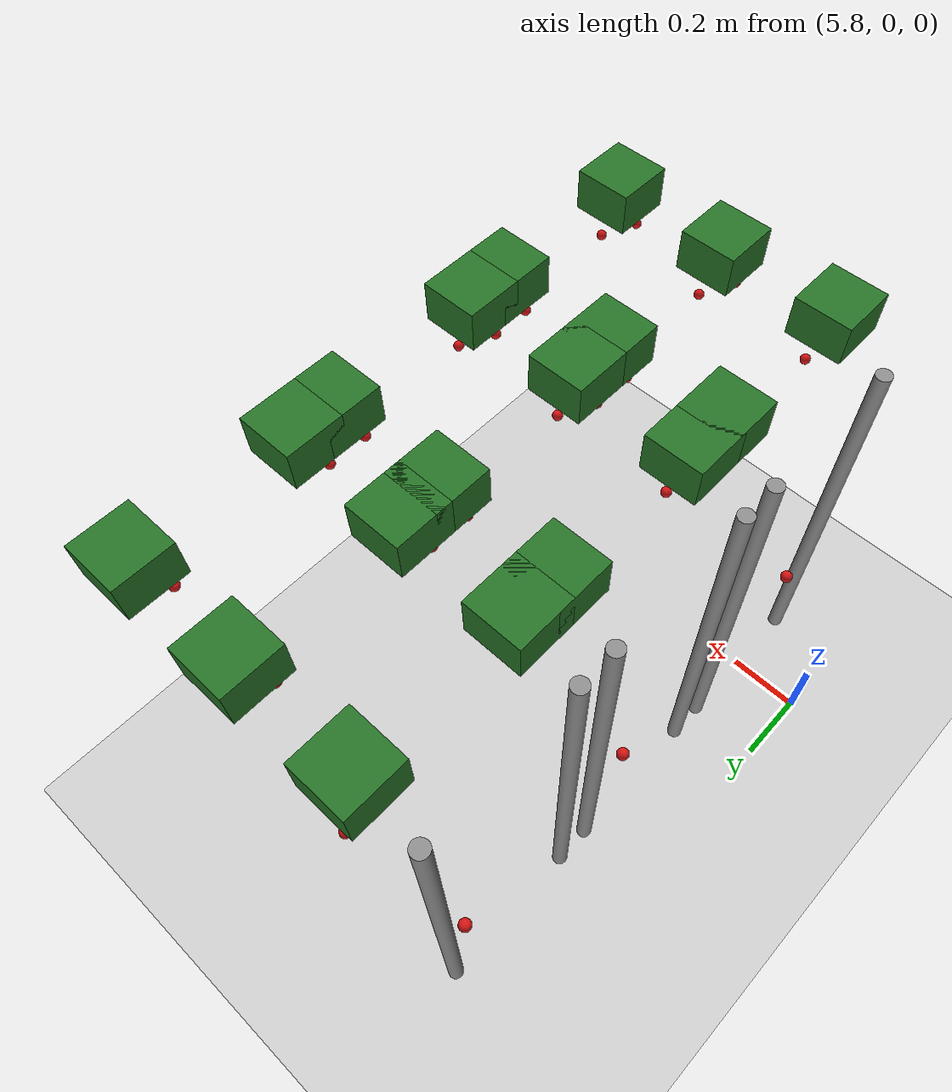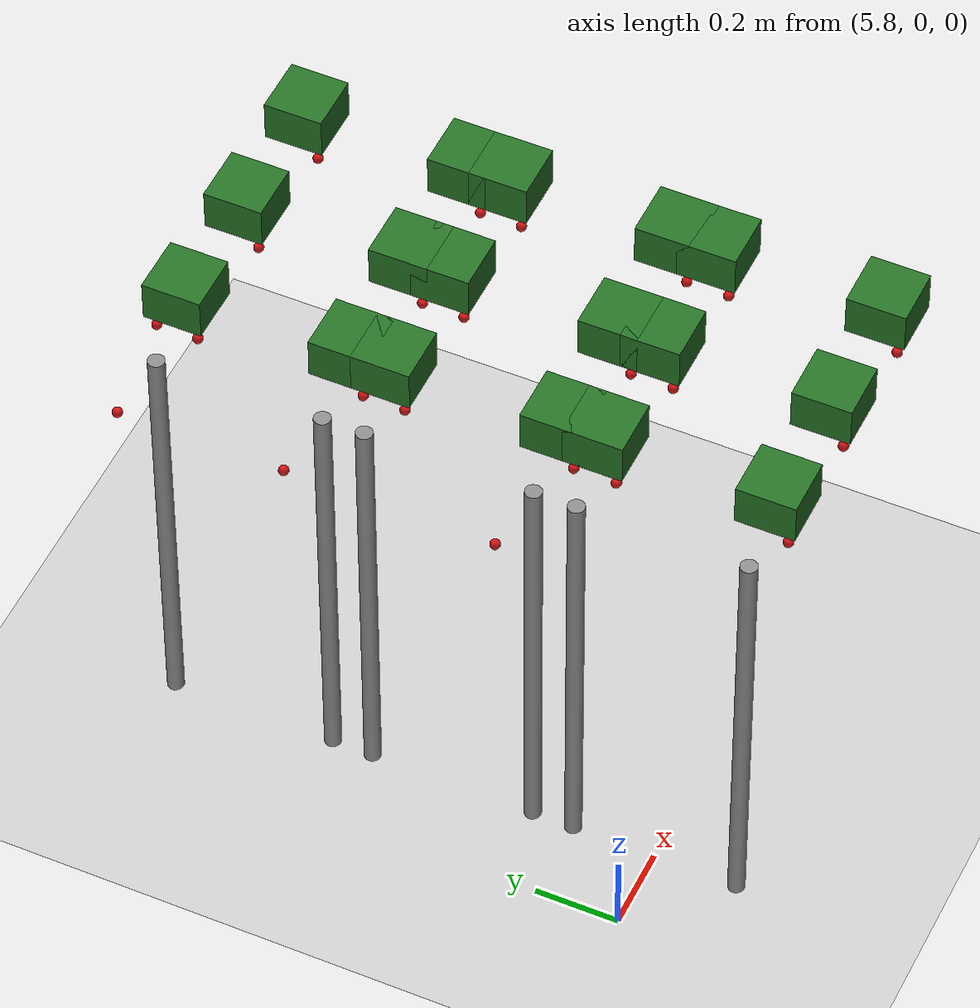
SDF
<sdf version="1.7">
 <world name="irish_polytunnel">
  <include><uri>model://sun</uri></include>
  <include><uri>model://ground_plane</uri></include>
  <model name="row0_L_post3">
   <static>true</static>
   <pose>6.000 0.200 0.550 0 0 0</pose>
   <link name="link">
    <collision name="collision">
     <geometry><cylinder><radius>0.02</radius><length>1.100</length></cylinder></geometry>
    </collision>
    <visual name="visual">
     <geometry><cylinder><radius>0.02</radius><length>1.100</length></cylinder></geometry>
     <material><ambient>0.5 0.5 0.5 1</ambient><diffuse>0.55 0.55 0.55 1</diffuse></material>
    </visual>
   </link>
  </model>
  <model name="row0_L_plant20_foliage">
   <static>true</static>
   <pose>6.150 0.200 1.180 0 0 0</pose>
   <link name="link">
    <visual name="visual">
     <geometry><box><size>0.14 0.14 0.10</size></box></geometry>
     <material><ambient>0.10 0.35 0.10 1</ambient><diffuse>0.15 0.45 0.15 1</diffuse></material>
    </visual>
   </link>
  </model>
  <model name="row0_L_plant20_berry_0">
   <static>true</static>
   <pose>6.120 0.160 1.070 0 0 0</pose>
   <link name="link">
    <visual name="visual">
     <geometry><sphere><radius>0.012</radius></sphere></geometry>
     <material><ambient>0.75 0.05 0.05 1</ambient><diffuse>0.85 0.08 0.08 1</diffuse></material>
    </visual>
   </link>
  </model>
  <model name="row0_L_plant20_berry_1">
   <static>true</static>
   <pose>6.170 0.230 1.050 0 0 0</pose>
   <link name="link">
    <visual name="visual">
     <geometry><sphere><radius>0.012</radius></sphere></geometry>
     <material><ambient>0.75 0.05 0.05 1</ambient><diffuse>0.85 0.08 0.08 1</diffuse></material>
    </visual>
   </link>
  </model>
  <model name="row0_L_plant21_foliage">
   <static>true</static>
   <pose>6.450 0.200 1.180 0 0 0</pose>
   <link name="link">
    <visual name="visual">
     <geometry><box><size>0.14 0.14 0.10</size></box></geometry>
     <material><ambient>0.10 0.35 0.10 1</ambient><diffuse>0.15 0.45 0.15 1</diffuse></material>
    </visual>
   </link>
  </model>
  <model name="row0_L_plant21_berry_0">
   <static>true</static>
   <pose>6.420 0.160 1.070 0 0 0</pose>
   <link name="link">
    <visual name="visual">
     <geometry><sphere><radius>0.012</radius></sphere></geometry>
     <material><ambient>0.75 0.05 0.05 1</ambient><diffuse>0.85 0.08 0.08 1</diffuse></material>
    </visual>
   </link>
  </model>
  <model name="row0_L_plant21_berry_1">
   <static>true</static>
   <pose>6.470 0.230 1.050 0 0 0</pose>
   <link name="link">
    <visual name="visual">
     <geometry><sphere><radius>0.012</radius></sphere></geometry>
     <material><ambient>0.75 0.05 0.05 1</ambient><diffuse>0.85 0.08 0.08 1</diffuse></material>
    </visual>
   </link>
  </model>
  <model name="row0_L_plant22_foliage">
   <static>true</static>
   <pose>6.750 0.200 1.180 0 0 0</pose>
   <link name="link">
    <visual name="visual">
     <geometry><box><size>0.14 0.14 0.10</size></box></geometry>
     <material><ambient>0.10 0.35 0.10 1</ambient><diffuse>0.15 0.45 0.15 1</diffuse></material>
    </visual>
   </link>
  </model>
  <model name="row0_L_plant22_berry_0">
   <static>true</static>
   <pose>6.720 0.160 1.070 0 0 0</pose>
   <link name="link">
    <visual name="visual">
     <geometry><sphere><radius>0.012</radius></sphere></geometry>
     <material><ambient>0.75 0.05 0.05 1</ambient><diffuse>0.85 0.08 0.08 1</diffuse></material>
    </visual>
   </link>
  </model>
  <model name="row0_L_plant22_berry_1">
   <static>true</static>
   <pose>6.770 0.230 1.050 0 0 0</pose>
   <link name="link">
    <visual name="visual">
     <geometry><sphere><radius>0.012</radius></sphere></geometry>
     <material><ambient>0.75 0.05 0.05 1</ambient><diffuse>0.85 0.08 0.08 1</diffuse></material>
    </visual>
   </link>
  </model>
  <model name="row0_R_post3">
   <static>true</static>
   <pose>6.000 -0.200 0.550 0 0 0</pose>
   <link name="link">
    <collision name="collision">
     <geometry><cylinder><radius>0.02</radius><length>1.100</length></cylinder></geometry>
    </collision>
    <visual name="visual">
     <geometry><cylinder><radius>0.02</radius><length>1.100</length></cylinder></geometry>
     <material><ambient>0.5 0.5 0.5 1</ambient><diffuse>0.55 0.55 0.55 1</diffuse></material>
    </visual>
   </link>
  </model>
  <model name="row0_R_plant20_foliage">
   <static>true</static>
   <pose>6.150 -0.200 1.180 0 0 0</pose>
   <link name="link">
    <visual name="visual">
     <geometry><box><size>0.14 0.14 0.10</size></box></geometry>
     <material><ambient>0.10 0.35 0.10 1</ambient><diffuse>0.15 0.45 0.15 1</diffuse></material>
    </visual>
   </link>
  </model>
  <model name="row0_R_plant20_berry_0">
   <static>true</static>
   <pose>6.120 -0.240 1.070 0 0 0</pose>
   <link name="link">
    <visual name="visual">
     <geometry><sphere><radius>0.012</radius></sphere></geometry>
     <material><ambient>0.75 0.05 0.05 1</ambient><diffuse>0.85 0.08 0.08 1</diffuse></material>
    </visual>
   </link>
  </model>
  <model name="row0_R_plant20_berry_1">
   <static>true</static>
   <pose>6.170 -0.170 1.050 0 0 0</pose>
   <link name="link">
    <visual name="visual">
     <geometry><sphere><radius>0.012</radius></sphere></geometry>
     <material><ambient>0.75 0.05 0.05 1</ambient><diffuse>0.85 0.08 0.08 1</diffuse></material>
    </visual>
   </link>
  </model>
  <model name="row0_R_plant21_foliage">
   <static>true</static>
   <pose>6.450 -0.200 1.180 0 0 0</pose>
   <link name="link">
    <visual name="visual">
     <geometry><box><size>0.14 0.14 0.10</size></box></geometry>
     <material><ambient>0.10 0.35 0.10 1</ambient><diffuse>0.15 0.45 0.15 1</diffuse></material>
    </visual>
   </link>
  </model>
  <model name="row0_R_plant21_berry_0">
   <static>true</static>
   <pose>6.420 -0.240 1.070 0 0 0</pose>
   <link name="link">
    <visual name="visual">
     <geometry><sphere><radius>0.012</radius></sphere></geometry>
     <material><ambient>0.75 0.05 0.05 1</ambient><diffuse>0.85 0.08 0.08 1</diffuse></material>
    </visual>
   </link>
  </model>
  <model name="row0_R_plant21_berry_1">
   <static>true</static>
   <pose>6.470 -0.170 1.050 0 0 0</pose>
   <link name="link">
    <visual name="visual">
     <geometry><sphere><radius>0.012</radius></sphere></geometry>
     <material><ambient>0.75 0.05 0.05 1</ambient><diffuse>0.85 0.08 0.08 1</diffuse></material>
    </visual>
   </link>
  </model>
  <model name="row0_R_plant22_foliage">
   <static>true</static>
   <pose>6.750 -0.200 1.180 0 0 0</pose>
   <link name="link">
    <visual name="visual">
     <geometry><box><size>0.14 0.14 0.10</size></box></geometry>
     <material><ambient>0.10 0.35 0.10 1</ambient><diffuse>0.15 0.45 0.15 1</diffuse></material>
    </visual>
   </link>
  </model>
  <model name="row0_R_plant22_berry_0">
   <static>true</static>
   <pose>6.720 -0.240 1.070 0 0 0</pose>
   <link name="link">
    <visual name="visual">
     <geometry><sphere><radius>0.012</radius></sphere></geometry>
     <material><ambient>0.75 0.05 0.05 1</ambient><diffuse>0.85 0.08 0.08 1</diffuse></material>
    </visual>
   </link>
  </model>
  <model name="row0_R_plant22_berry_1">
   <static>true</static>
   <pose>6.770 -0.170 1.050 0 0 0</pose>
   <link name="link">
    <visual name="visual">
     <geometry><sphere><radius>0.012</radius></sphere></geometry>
     <material><ambient>0.75 0.05 0.05 1</ambient><diffuse>0.85 0.08 0.08 1</diffuse></material>
    </visual>
   </link>
  </model>
  <model name="row1_L_post3">
   <static>true</static>
   <pose>6.000 0.700 0.550 0 0 0</pose>
   <link name="link">
    <collision name="collision">
     <geometry><cylinder><radius>0.02</radius><length>1.100</length></cylinder></geometry>
    </collision>
    <visual name="visual">
     <geometry><cylinder><radius>0.02</radius><length>1.100</length></cylinder></geometry>
     <material><ambient>0.5 0.5 0.5 1</ambient><diffuse>0.55 0.55 0.55 1</diffuse></material>
    </visual>
   </link>
  </model>
  <model name="row1_L_plant20_foliage">
   <static>true</static>
   <pose>6.150 0.700 1.180 0 0 0</pose>
   <link name="link">
    <visual name="visual">
     <geometry><box><size>0.14 0.14 0.10</size></box></geometry>
     <material><ambient>0.10 0.35 0.10 1</ambient><diffuse>0.15 0.45 0.15 1</diffuse></material>
    </visual>
   </link>
  </model>
  <model name="row1_L_plant20_berry_0">
   <static>true</static>
   <pose>6.120 0.660 1.070 0 0 0</pose>
   <link name="link">
    <visual name="visual">
     <geometry><sphere><radius>0.012</radius></sphere></geometry>
     <material><ambient>0.75 0.05 0.05 1</ambient><diffuse>0.85 0.08 0.08 1</diffuse></material>
    </visual>
   </link>
  </model>
  <model name="row1_L_plant20_berry_1">
   <static>true</static>
   <pose>6.170 0.730 1.050 0 0 0</pose>
   <link name="link">
    <visual name="visual">
     <geometry><sphere><radius>0.012</radius></sphere></geometry>
     <material><ambient>0.75 0.05 0.05 1</ambient><diffuse>0.85 0.08 0.08 1</diffuse></material>
    </visual>
   </link>
  </model>
  <model name="row1_L_plant21_foliage">
   <static>true</static>
   <pose>6.450 0.700 1.180 0 0 0</pose>
   <link name="link">
    <visual name="visual">
     <geometry><box><size>0.14 0.14 0.10</size></box></geometry>
     <material><ambient>0.10 0.35 0.10 1</ambient><diffuse>0.15 0.45 0.15 1</diffuse></material>
    </visual>
   </link>
  </model>
  <model name="row1_L_plant21_berry_0">
   <static>true</static>
   <pose>6.420 0.660 1.070 0 0 0</pose>
   <link name="link">
    <visual name="visual">
     <geometry><sphere><radius>0.012</radius></sphere></geometry>
     <material><ambient>0.75 0.05 0.05 1</ambient><diffuse>0.85 0.08 0.08 1</diffuse></material>
    </visual>
   </link>
  </model>
  <model name="row1_L_plant21_berry_1">
   <static>true</static>
   <pose>6.470 0.730 1.050 0 0 0</pose>
   <link name="link">
    <visual name="visual">
     <geometry><sphere><radius>0.012</radius></sphere></geometry>
     <material><ambient>0.75 0.05 0.05 1</ambient><diffuse>0.85 0.08 0.08 1</diffuse></material>
    </visual>
   </link>
  </model>
  <model name="row1_L_plant22_foliage">
   <static>true</static>
   <pose>6.750 0.700 1.180 0 0 0</pose>
   <link name="link">
    <visual name="visual">
     <geometry><box><size>0.14 0.14 0.10</size></box></geometry>
     <material><ambient>0.10 0.35 0.10 1</ambient><diffuse>0.15 0.45 0.15 1</diffuse></material>
    </visual>
   </link>
  </model>
  <model name="row1_L_plant22_berry_0">
   <static>true</static>
   <pose>6.720 0.660 1.070 0 0 0</pose>
   <link name="link">
    <visual name="visual">
     <geometry><sphere><radius>0.012</radius></sphere></geometry>
     <material><ambient>0.75 0.05 0.05 1</ambient><diffuse>0.85 0.08 0.08 1</diffuse></material>
    </visual>
   </link>
  </model>
  <model name="row1_L_plant22_berry_1">
   <static>true</static>
   <pose>6.770 0.730 1.050 0 0 0</pose>
   <link name="link">
    <visual name="visual">
     <geometry><sphere><radius>0.012</radius></sphere></geometry>
     <material><ambient>0.75 0.05 0.05 1</ambient><diffuse>0.85 0.08 0.08 1</diffuse></material>
    </visual>
   </link>
  </model>
  <model name="row1_R_post3">
   <static>true</static>
   <pose>6.000 0.300 0.550 0 0 0</pose>
   <link name="link">
    <collision name="collision">
     <geometry><cylinder><radius>0.02</radius><length>1.100</length></cylinder></geometry>
    </collision>
    <visual name="visual">
     <geometry><cylinder><radius>0.02</radius><length>1.100</length></cylinder></geometry>
     <material><ambient>0.5 0.5 0.5 1</ambient><diffuse>0.55 0.55 0.55 1</diffuse></material>
    </visual>
   </link>
  </model>
  <model name="row1_R_plant19_berry_1">
   <static>true</static>
   <pose>5.870 0.330 1.050 0 0 0</pose>
   <link name="link">
    <visual name="visual">
     <geometry><sphere><radius>0.012</radius></sphere></geometry>
     <material><ambient>0.75 0.05 0.05 1</ambient><diffuse>0.85 0.08 0.08 1</diffuse></material>
    </visual>
   </link>
  </model>
  <model name="row1_R_plant20_foliage">
   <static>true</static>
   <pose>6.150 0.300 1.180 0 0 0</pose>
   <link name="link">
    <visual name="visual">
     <geometry><box><size>0.14 0.14 0.10</size></box></geometry>
     <material><ambient>0.10 0.35 0.10 1</ambient><diffuse>0.15 0.45 0.15 1</diffuse></material>
    </visual>
   </link>
  </model>
  <model name="row1_R_plant20_berry_0">
   <static>true</static>
   <pose>6.120 0.260 1.070 0 0 0</pose>
   <link name="link">
    <visual name="visual">
     <geometry><sphere><radius>0.012</radius></sphere></geometry>
     <material><ambient>0.75 0.05 0.05 1</ambient><diffuse>0.85 0.08 0.08 1</diffuse></material>
    </visual>
   </link>
  </model>
  <model name="row1_R_plant20_berry_1">
   <static>true</static>
   <pose>6.170 0.330 1.050 0 0 0</pose>
   <link name="link">
    <visual name="visual">
     <geometry><sphere><radius>0.012</radius></sphere></geometry>
     <material><ambient>0.75 0.05 0.05 1</ambient><diffuse>0.85 0.08 0.08 1</diffuse></material>
    </visual>
   </link>
  </model>
  <model name="row1_R_plant21_foliage">
   <static>true</static>
   <pose>6.450 0.300 1.180 0 0 0</pose>
   <link name="link">
    <visual name="visual">
     <geometry><box><size>0.14 0.14 0.10</size></box></geometry>
     <material><ambient>0.10 0.35 0.10 1</ambient><diffuse>0.15 0.45 0.15 1</diffuse></material>
    </visual>
   </link>
  </model>
  <model name="row1_R_plant21_berry_0">
   <static>true</static>
   <pose>6.420 0.260 1.070 0 0 0</pose>
   <link name="link">
    <visual name="visual">
     <geometry><sphere><radius>0.012</radius></sphere></geometry>
     <material><ambient>0.75 0.05 0.05 1</ambient><diffuse>0.85 0.08 0.08 1</diffuse></material>
    </visual>
   </link>
  </model>
  <model name="row1_R_plant21_berry_1">
   <static>true</static>
   <pose>6.470 0.330 1.050 0 0 0</pose>
   <link name="link">
    <visual name="visual">
     <geometry><sphere><radius>0.012</radius></sphere></geometry>
     <material><ambient>0.75 0.05 0.05 1</ambient><diffuse>0.85 0.08 0.08 1</diffuse></material>
    </visual>
   </link>
  </model>
  <model name="row1_R_plant22_foliage">
   <static>true</static>
   <pose>6.750 0.300 1.180 0 0 0</pose>
   <link name="link">
    <visual name="visual">
     <geometry><box><size>0.14 0.14 0.10</size></box></geometry>
     <material><ambient>0.10 0.35 0.10 1</ambient><diffuse>0.15 0.45 0.15 1</diffuse></material>
    </visual>
   </link>
  </model>
  <model name="row1_R_plant22_berry_0">
   <static>true</static>
   <pose>6.720 0.260 1.070 0 0 0</pose>
   <link name="link">
    <visual name="visual">
     <geometry><sphere><radius>0.012</radius></sphere></geometry>
     <material><ambient>0.75 0.05 0.05 1</ambient><diffuse>0.85 0.08 0.08 1</diffuse></material>
    </visual>
   </link>
  </model>
  <model name="row1_R_plant22_berry_1">
   <static>true</static>
   <pose>6.770 0.330 1.050 0 0 0</pose>
   <link name="link">
    <visual name="visual">
     <geometry><sphere><radius>0.012</radius></sphere></geometry>
     <material><ambient>0.75 0.05 0.05 1</ambient><diffuse>0.85 0.08 0.08 1</diffuse></material>
    </visual>
   </link>
  </model>
  <model name="row2_L_post3">
   <static>true</static>
   <pose>6.000 1.200 0.550 0 0 0</pose>
   <link name="link">
    <collision name="collision">
     <geometry><cylinder><radius>0.02</radius><length>1.100</length></cylinder></geometry>
    </collision>
    <visual name="visual">
     <geometry><cylinder><radius>0.02</radius><length>1.100</length></cylinder></geometry>
     <material><ambient>0.5 0.5 0.5 1</ambient><diffuse>0.55 0.55 0.55 1</diffuse></material>
    </visual>
   </link>
  </model>
  <model name="row2_L_plant19_berry_1">
   <static>true</static>
   <pose>5.870 1.230 1.050 0 0 0</pose>
   <link name="link">
    <visual name="visual">
     <geometry><sphere><radius>0.012</radius></sphere></geometry>
     <material><ambient>0.75 0.05 0.05 1</ambient><diffuse>0.85 0.08 0.08 1</diffuse></material>
    </visual>
   </link>
  </model>
  <model name="row2_L_plant20_foliage">
   <static>true</static>
   <pose>6.150 1.200 1.180 0 0 0</pose>
   <link name="link">
    <visual name="visual">
     <geometry><box><size>0.14 0.14 0.10</size></box></geometry>
     <material><ambient>0.10 0.35 0.10 1</ambient><diffuse>0.15 0.45 0.15 1</diffuse></material>
    </visual>
   </link>
  </model>
  <model name="row2_L_plant20_berry_0">
   <static>true</static>
   <pose>6.120 1.160 1.070 0 0 0</pose>
   <link name="link">
    <visual name="visual">
     <geometry><sphere><radius>0.012</radius></sphere></geometry>
     <material><ambient>0.75 0.05 0.05 1</ambient><diffuse>0.85 0.08 0.08 1</diffuse></material>
    </visual>
   </link>
  </model>
  <model name="row2_L_plant20_berry_1">
   <static>true</static>
   <pose>6.170 1.230 1.050 0 0 0</pose>
   <link name="link">
    <visual name="visual">
     <geometry><sphere><radius>0.012</radius></sphere></geometry>
     <material><ambient>0.75 0.05 0.05 1</ambient><diffuse>0.85 0.08 0.08 1</diffuse></material>
    </visual>
   </link>
  </model>
  <model name="row2_L_plant21_foliage">
   <static>true</static>
   <pose>6.450 1.200 1.180 0 0 0</pose>
   <link name="link">
    <visual name="visual">
     <geometry><box><size>0.14 0.14 0.10</size></box></geometry>
     <material><ambient>0.10 0.35 0.10 1</ambient><diffuse>0.15 0.45 0.15 1</diffuse></material>
    </visual>
   </link>
  </model>
  <model name="row2_L_plant21_berry_0">
   <static>true</static>
   <pose>6.420 1.160 1.070 0 0 0</pose>
   <link name="link">
    <visual name="visual">
     <geometry><sphere><radius>0.012</radius></sphere></geometry>
     <material><ambient>0.75 0.05 0.05 1</ambient><diffuse>0.85 0.08 0.08 1</diffuse></material>
    </visual>
   </link>
  </model>
  <model name="row2_L_plant21_berry_1">
   <static>true</static>
   <pose>6.470 1.230 1.050 0 0 0</pose>
   <link name="link">
    <visual name="visual">
     <geometry><sphere><radius>0.012</radius></sphere></geometry>
     <material><ambient>0.75 0.05 0.05 1</ambient><diffuse>0.85 0.08 0.08 1</diffuse></material>
    </visual>
   </link>
  </model>
  <model name="row2_L_plant22_foliage">
   <static>true</static>
   <pose>6.750 1.200 1.180 0 0 0</pose>
   <link name="link">
    <visual name="visual">
     <geometry><box><size>0.14 0.14 0.10</size></box></geometry>
     <material><ambient>0.10 0.35 0.10 1</ambient><diffuse>0.15 0.45 0.15 1</diffuse></material>
    </visual>
   </link>
  </model>
  <model name="row2_L_plant22_berry_0">
   <static>true</static>
   <pose>6.720 1.160 1.070 0 0 0</pose>
   <link name="link">
    <visual name="visual">
     <geometry><sphere><radius>0.012</radius></sphere></geometry>
     <material><ambient>0.75 0.05 0.05 1</ambient><diffuse>0.85 0.08 0.08 1</diffuse></material>
    </visual>
   </link>
  </model>
  <model name="row2_R_post3">
   <static>true</static>
   <pose>6.000 0.800 0.550 0 0 0</pose>
   <link name="link">
    <collision name="collision">
     <geometry><cylinder><radius>0.02</radius><length>1.100</length></cylinder></geometry>
    </collision>
    <visual name="visual">
     <geometry><cylinder><radius>0.02</radius><length>1.100</length></cylinder></geometry>
     <material><ambient>0.5 0.5 0.5 1</ambient><diffuse>0.55 0.55 0.55 1</diffuse></material>
    </visual>
   </link>
  </model>
  <model name="row2_R_plant19_berry_1">
   <static>true</static>
   <pose>5.870 0.830 1.050 0 0 0</pose>
   <link name="link">
    <visual name="visual">
     <geometry><sphere><radius>0.012</radius></sphere></geometry>
     <material><ambient>0.75 0.05 0.05 1</ambient><diffuse>0.85 0.08 0.08 1</diffuse></material>
    </visual>
   </link>
  </model>
  <model name="row2_R_plant20_foliage">
   <static>true</static>
   <pose>6.150 0.800 1.180 0 0 0</pose>
   <link name="link">
    <visual name="visual">
     <geometry><box><size>0.14 0.14 0.10</size></box></geometry>
     <material><ambient>0.10 0.35 0.10 1</ambient><diffuse>0.15 0.45 0.15 1</diffuse></material>
    </visual>
   </link>
  </model>
  <model name="row2_R_plant20_berry_0">
   <static>true</static>
   <pose>6.120 0.760 1.070 0 0 0</pose>
   <link name="link">
    <visual name="visual">
     <geometry><sphere><radius>0.012</radius></sphere></geometry>
     <material><ambient>0.75 0.05 0.05 1</ambient><diffuse>0.85 0.08 0.08 1</diffuse></material>
    </visual>
   </link>
  </model>
  <model name="row2_R_plant20_berry_1">
   <static>true</static>
   <pose>6.170 0.830 1.050 0 0 0</pose>
   <link name="link">
    <visual name="visual">
     <geometry><sphere><radius>0.012</radius></sphere></geometry>
     <material><ambient>0.75 0.05 0.05 1</ambient><diffuse>0.85 0.08 0.08 1</diffuse></material>
    </visual>
   </link>
  </model>
  <model name="row2_R_plant21_foliage">
   <static>true</static>
   <pose>6.450 0.800 1.180 0 0 0</pose>
   <link name="link">
    <visual name="visual">
     <geometry><box><size>0.14 0.14 0.10</size></box></geometry>
     <material><ambient>0.10 0.35 0.10 1</ambient><diffuse>0.15 0.45 0.15 1</diffuse></material>
    </visual>
   </link>
  </model>
  <model name="row2_R_plant21_berry_0">
   <static>true</static>
   <pose>6.420 0.760 1.070 0 0 0</pose>
   <link name="link">
    <visual name="visual">
     <geometry><sphere><radius>0.012</radius></sphere></geometry>
     <material><ambient>0.75 0.05 0.05 1</ambient><diffuse>0.85 0.08 0.08 1</diffuse></material>
    </visual>
   </link>
  </model>
  <model name="row2_R_plant21_berry_1">
   <static>true</static>
   <pose>6.470 0.830 1.050 0 0 0</pose>
   <link name="link">
    <visual name="visual">
     <geometry><sphere><radius>0.012</radius></sphere></geometry>
     <material><ambient>0.75 0.05 0.05 1</ambient><diffuse>0.85 0.08 0.08 1</diffuse></material>
    </visual>
   </link>
  </model>
  <model name="row2_R_plant22_foliage">
   <static>true</static>
   <pose>6.750 0.800 1.180 0 0 0</pose>
   <link name="link">
    <visual name="visual">
     <geometry><box><size>0.14 0.14 0.10</size></box></geometry>
     <material><ambient>0.10 0.35 0.10 1</ambient><diffuse>0.15 0.45 0.15 1</diffuse></material>
    </visual>
   </link>
  </model>
  <model name="row2_R_plant22_berry_0">
   <static>true</static>
   <pose>6.720 0.760 1.070 0 0 0</pose>
   <link name="link">
    <visual name="visual">
     <geometry><sphere><radius>0.012</radius></sphere></geometry>
     <material><ambient>0.75 0.05 0.05 1</ambient><diffuse>0.85 0.08 0.08 1</diffuse></material>
    </visual>
   </link>
  </model>
  <model name="row3_R_plant20_berry_0">
   <static>true</static>
   <pose>6.120 1.260 1.070 0 0 0</pose>
   <link name="link">
    <visual name="visual">
     <geometry><sphere><radius>0.012</radius></sphere></geometry>
     <material><ambient>0.75 0.05 0.05 1</ambient><diffuse>0.85 0.08 0.08 1</diffuse></material>
    </visual>
   </link>
  </model>
 </world>
</sdf>
